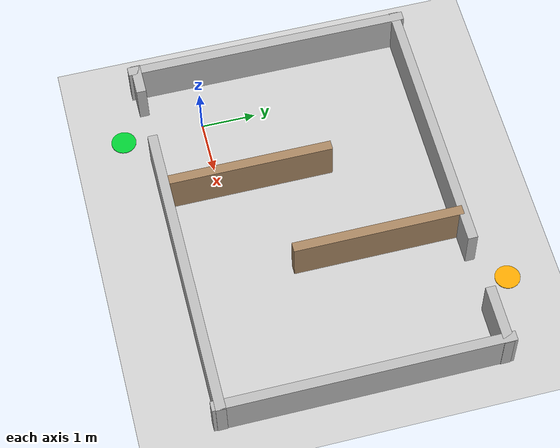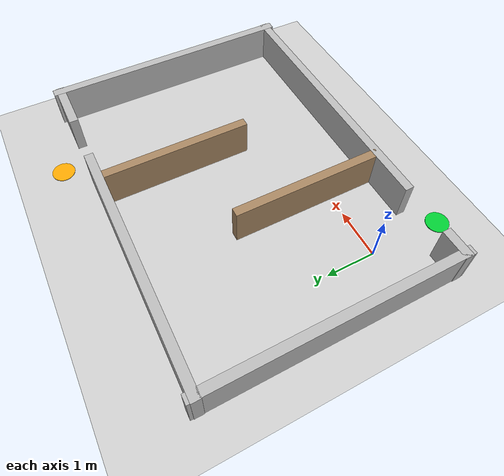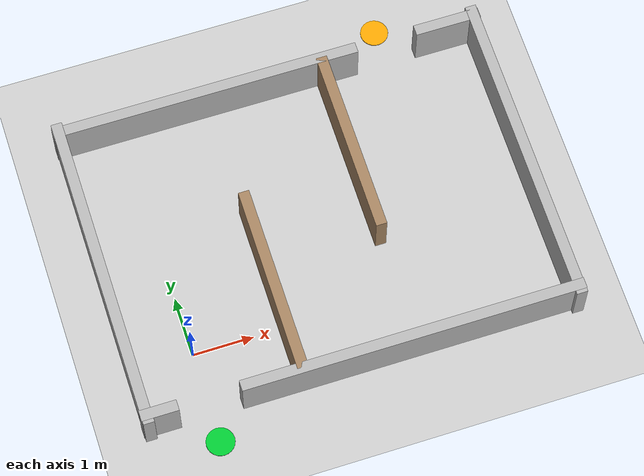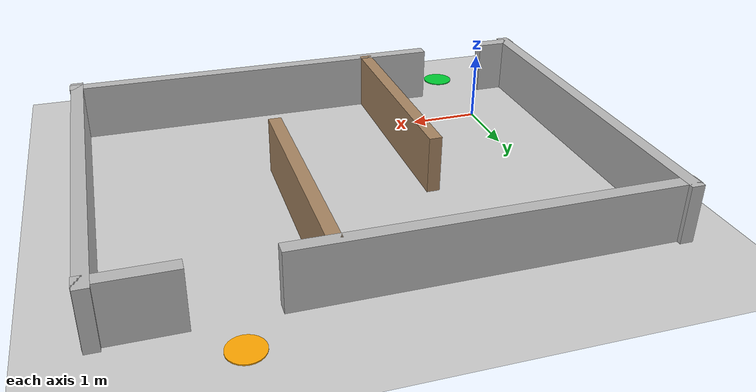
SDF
<?xml version="1.0"?>
<sdf version="1.6">

  <world name="canyon_maze">

    <!-- 1. 地面和光照 -->

    <include>
      <uri>model://ground_plane</uri>
    </include>

    <include>
      <uri>model://sun</uri>
    </include>

    <scene>
      <ambient>0.5 0.5 0.5 1</ambient>
      <background>0.7 0.75 0.8 1</background>
    </scene>

    <!-- 2. 迷宫墙体 -->

    <model name="canyon_walls">
      <static>true</static>

      <!-- 西侧外墙 -->
      <link name="west_wall">
        <pose>-1.0 1.5 0.4 0 0 0</pose>

        <collision name="collision">
          <geometry>
            <box>
              <size>0.18 5.3 0.8</size>
            </box>
          </geometry>
        </collision>

        <visual name="visual">
          <geometry>
            <box>
              <size>0.18 5.3 0.8</size>
            </box>
          </geometry>
        </visual>
      </link>

      <!-- 东侧外墙 -->
      <link name="east_wall">
        <pose>6.0 1.5 0.4 0 0 0</pose>

        <collision name="collision">
          <geometry>
            <box>
              <size>0.18 5.3 0.8</size>
            </box>
          </geometry>
        </collision>

        <visual name="visual">
          <geometry>
            <box>
              <size>0.18 5.3 0.8</size>
            </box>
          </geometry>
        </visual>
      </link>

      <!-- 南侧外墙：设置入口 -->
      <!-- 入口中心 (0, -1) -->
      <!-- 入口宽度 1.0m -->

      <!-- 南侧左段 -->
      <link name="south_wall_left">
        <pose>-0.8 -1.0 0.4 0 0 0</pose>

        <collision name="collision">
          <geometry>
            <box>
              <size>0.6 0.18 0.8</size>
            </box>
          </geometry>
        </collision>

        <visual name="visual">
          <geometry>
            <box>
              <size>0.6 0.18 0.8</size>
            </box>
          </geometry>
        </visual>
      </link>

      <!-- 南侧右段 -->
      <link name="south_wall_right">
        <pose>3.3 -1.0 0.4 0 0 0</pose>

        <collision name="collision">
          <geometry>
            <box>
              <size>5.6 0.18 0.8</size>
            </box>
          </geometry>
        </collision>

        <visual name="visual">
          <geometry>
            <box>
              <size>5.6 0.18 0.8</size>
            </box>
          </geometry>
        </visual>
      </link>

      <!-- 北侧外墙：设置出口 -->
      <!-- 出口中心 (4.5, 4.0) -->
      <!-- 出口宽度 1.0m -->

      <!-- 北侧左段 -->
      <link name="north_wall_left">
        <pose>1.45 4.0 0.4 0 0 0</pose>

        <collision name="collision">
          <geometry>
            <box>
              <size>5.1 0.18 0.8</size>
            </box>
          </geometry>
        </collision>

        <visual name="visual">
          <geometry>
            <box>
              <size>5.1 0.18 0.8</size>
            </box>
          </geometry>
        </visual>
      </link>

      <!-- 北侧右段 -->
      <link name="north_wall_right">
        <pose>5.55 4.0 0.4 0 0 0</pose>

        <collision name="collision">
          <geometry>
            <box>
              <size>1.1 0.18 0.8</size>
            </box>
          </geometry>
        </collision>

        <visual name="visual">
          <geometry>
            <box>
              <size>1.1 0.18 0.8</size>
            </box>
          </geometry>
        </visual>
      </link>

      <!-- 内部S型隔墙 -->

      <!-- 第一面隔墙：从南侧向北延伸 -->
      <link name="inner_wall_1">
        <pose>1.5 0.55 0.4 0 0 0</pose>

        <collision name="collision">
          <geometry>
            <box>
              <size>0.18 3.1 0.8</size>
            </box>
          </geometry>
        </collision>

        <visual name="visual">
          <geometry>
            <box>
              <size>0.18 3.1 0.8</size>
            </box>
          </geometry>

          <material>
            <ambient>0.58 0.45 0.32 1</ambient>
            <diffuse>0.65 0.52 0.38 1</diffuse>
          </material>
        </visual>
      </link>

      <!-- 第二面隔墙：从北侧向南延伸 -->
      <link name="inner_wall_2">
        <pose>3.4 2.45 0.4 0 0 0</pose>

        <collision name="collision">
          <geometry>
            <box>
              <size>0.18 3.1 0.8</size>
            </box>
          </geometry>
        </collision>

        <visual name="visual">
          <geometry>
            <box>
              <size>0.18 3.1 0.8</size>
            </box>
          </geometry>

          <material>
            <ambient>0.58 0.45 0.32 1</ambient>
            <diffuse>0.65 0.52 0.38 1</diffuse>
          </material>
        </visual>
      </link>

    </model>

    <!-- 3. 绿色入口标记 -->
    <!-- 入口外侧 (0, -1.5) -->

    <model name="start_marker">
      <static>true</static>

      <link name="start_link">
        <pose>0 -1.5 0.012 0 0 0</pose>

        <visual name="visual">
          <geometry>
            <cylinder>
              <radius>0.23</radius>
              <length>0.015</length>
            </cylinder>
          </geometry>

          <material>
            <ambient>0 0.8 0.2 1</ambient>
            <diffuse>0 0.8 0.2 1</diffuse>
          </material>
        </visual>
      </link>
    </model>

    <!-- 4. 黄色出口标记 -->
    <!-- 出口外侧 (4.5, 4.55) -->

    <model name="finish_marker">
      <static>true</static>

      <link name="finish_link">
        <pose>4.5 4.55 0.012 0 0 0</pose>

        <visual name="visual">
          <geometry>
            <cylinder>
              <radius>0.23</radius>
              <length>0.015</length>
            </cylinder>
          </geometry>

          <material>
            <ambient>1 0.65 0 1</ambient>
            <diffuse>1 0.65 0 1</diffuse>
          </material>
        </visual>
      </link>
    </model>

  </world>

</sdf>
